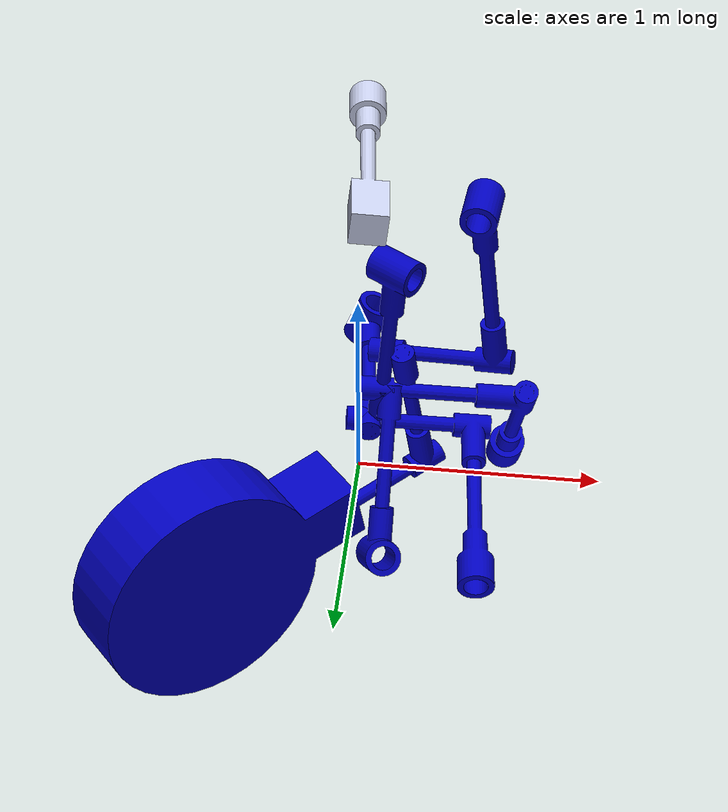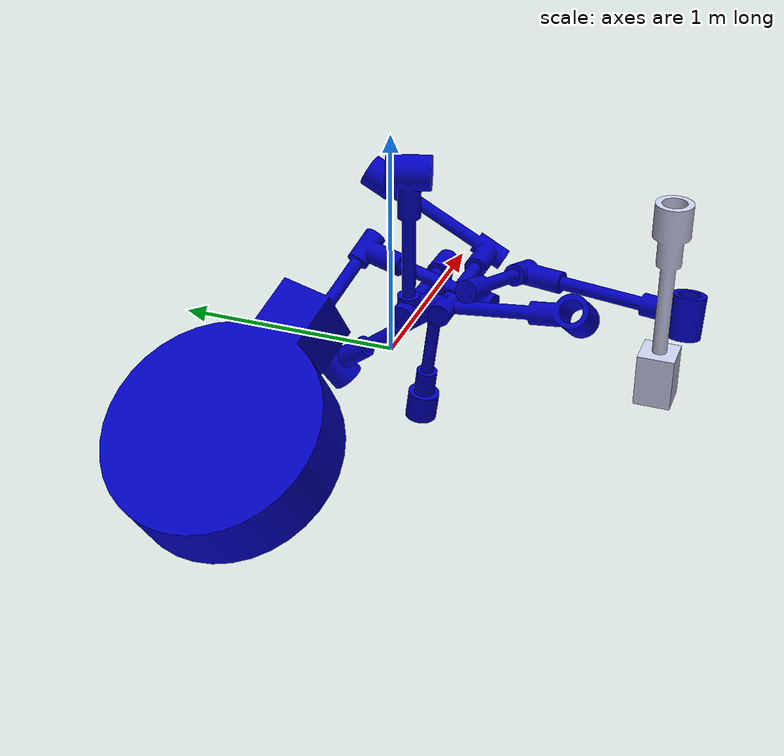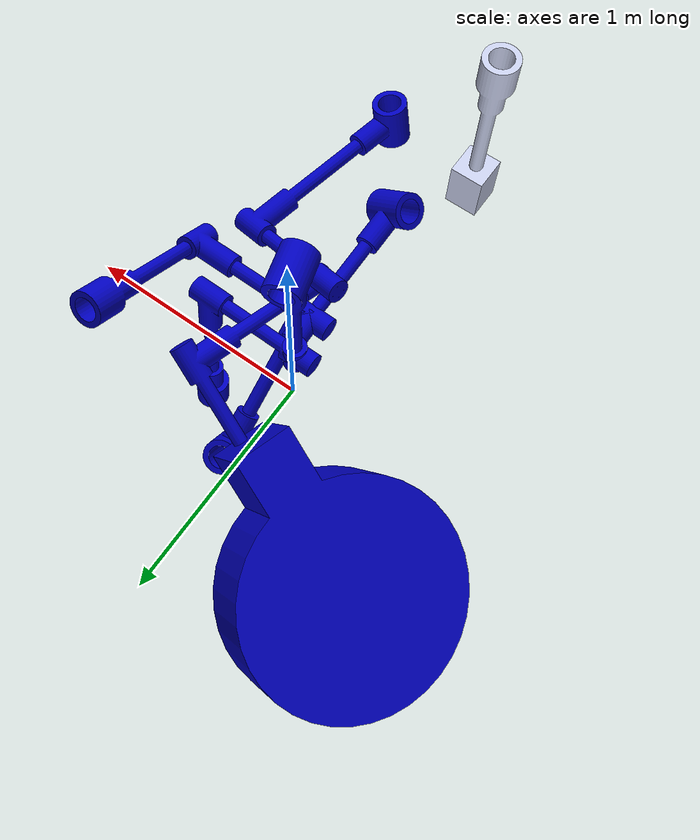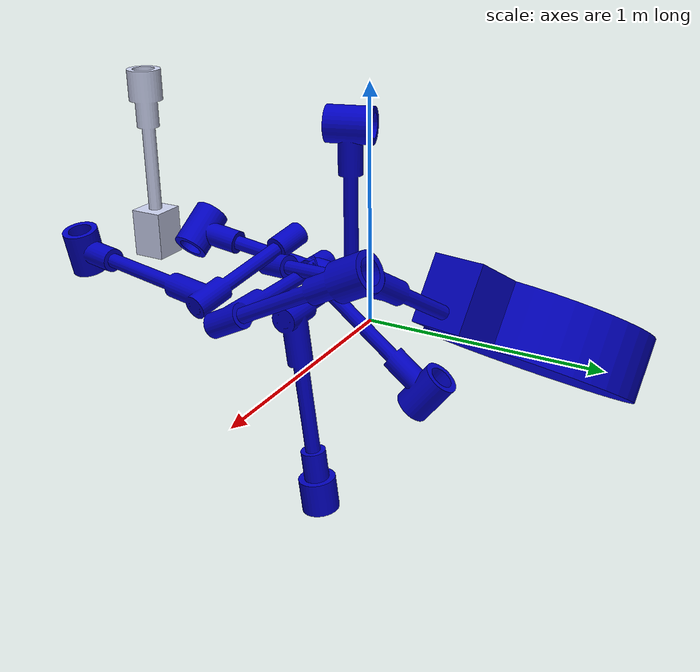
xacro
<?xml version="1.0" encoding="utf-8"?>
<robot
  name="1337dof.SLDASM">
  <link
    name="base_link">
    <inertial>
      <origin
        xyz="0.0369684012889796 0.0506212420276967 0.0677582412684986"
        rpy="0 0 0" />
      <mass
        value="0.173941058727949" />
      <inertia
        ixx="6.29832745939654E-05"
        ixy="1.65882325973073E-21"
        ixz="8.70254787086307E-21"
        iyy="0.00015866482435123"
        iyz="3.63886496984304E-19"
        izz="0.000123733274593965" />
    </inertial>
    <visual>
      <origin
        xyz="0 0 0"
        rpy="0 0 0" />
      <geometry>
        <mesh
		filename="$(find gazebodemo)/meshes/base_link.STL" />
      </geometry>
      <material
        name="">
        <color
          rgba="0.792156862745098 0.819607843137255 0.933333333333333 1" />
      </material>
    </visual>
    <collision>
      <origin
        xyz="0 0 0"
        rpy="0 0 0" />
      <geometry>
        <mesh
          filename="$(find gazebodemo)/meshes/base_link.STL" />
      </geometry>
    </collision>
  </link>
  <link
    name="Link1">
    <inertial>
      <origin
        xyz="2.65069825117203E-08 9.48872398709444E-09 -0.0359498127962766"
        rpy="0 0 0" />
      <mass
        value="0.0173257120587347" />
      <inertia
        ixx="3.25004859520439E-06"
        ixy="-3.38069193137107E-08"
        ixz="-1.70742167067627E-12"
        iyy="3.16261734314593E-06"
        iyz="5.74155862245102E-13"
        izz="9.20540399713751E-07" />
    </inertial>
    <visual>
      <origin
        xyz="0 0 0"
        rpy="0 0 0" />
      <geometry>
        <mesh
          filename="$(find gazebodemo)/meshes/Link1.STL" />
      </geometry>
      <material
        name="">
        <color
          rgba="0 0 0.752941176470588 1" />
      </material>
    </visual>
    <collision>
      <origin
        xyz="0 0 0"
        rpy="0 0 0" />
      <geometry>
        <mesh
          filename="$(find gazebodemo)/meshes/Link1.STL" />
      </geometry>
    </collision>
  </link>
  <joint
    name="theta1"
    type="continuous">
    <origin
      xyz="0.036968 -0.067758 0.1233"
      rpy="-3.1416 0 -0.34573" />
    <parent
      link="base_link" />
    <child
      link="Link1" />
    <axis
      xyz="0 0 1" />
  </joint>
  <link
    name="Link2">
    <inertial>
      <origin
        xyz="-0.0262269945070539 -0.015432929319128 0.0278714006556136"
        rpy="0 0 0" />
      <mass
        value="0.028168801779387" />
      <inertia
        ixx="3.52986424086249E-06"
        ixy="-7.55951935781856E-07"
        ixz="6.6164849512353E-13"
        iyy="4.36970759114926E-06"
        iyz="2.69723171306858E-12"
        izz="3.09973972288891E-06" />
    </inertial>
    <visual>
      <origin
        xyz="0 0 0"
        rpy="0 0 0" />
      <geometry>
        <mesh
          filename="$(find gazebodemo)/meshes/Link2.STL" />
      </geometry>
      <material
        name="">
        <color
          rgba="0 0 0.752941176470588 1" />
      </material>
    </visual>
    <collision>
      <origin
        xyz="0 0 0"
        rpy="0 0 0" />
      <geometry>
        <mesh
          filename="$(find gazebodemo)/meshes/Link2.STL" />
      </geometry>
    </collision>
  </link>
  <joint
    name="theta2"
    type="continuous">
    <origin
      xyz="0 0 -0.0750000000000031"
      rpy="-1.57079632679489 -0.650235874325519 -1.89990096674987" />
    <parent
      link="Link1" />
    <child
      link="Link2" />
    <axis
      xyz="0 0 1" />
  </joint>
  <link
    name="Link3">
    <inertial>
      <origin
        xyz="-4.46466091874598E-09 3.66335109469595E-09 -0.0385347824681982"
        rpy="0 0 0" />
      <mass
        value="0.0173255245335808" />
      <inertia
        ixx="3.15982752455319E-06"
        ixy="-2.98474022656947E-08"
        ixz="2.66809423869217E-13"
        iyy="3.25283096394751E-06"
        iyz="-3.20363490750374E-13"
        izz="9.20528460758495E-07" />
    </inertial>
    <visual>
      <origin
        xyz="0 0 0"
        rpy="0 0 0" />
      <geometry>
        <mesh
          filename="$(find gazebodemo)/meshes/Link3.STL" />
      </geometry>
      <material
        name="">
        <color
          rgba="0 0 0.752941176470588 1" />
      </material>
    </visual>
    <collision>
      <origin
        xyz="0 0 0"
        rpy="0 0 0" />
      <geometry>
        <mesh
          filename="$(find gazebodemo)/meshes/Link3.STL" />
      </geometry>
    </collision>
  </link>
  <joint
    name="theta3"
    type="continuous">
    <origin
      xyz="-0.0693060832608529 -0.0407822352304805 0.0399999999999975"
      rpy="1.5707963267949 0.285331074546732 2.10266992901883" />
    <parent
      link="Link2" />
    <child
      link="Link3" />
    <axis
      xyz="0 0 1" />
  </joint>
  <link
    name="Link4">
    <inertial>
      <origin
        xyz="0.00511483497525969 0.0299978037394035 -0.022871402565206"
        rpy="0 0 0" />
      <mass
        value="0.0281688125335254" />
      <inertia
        ixx="4.76567297728397E-06"
        ixy="-2.86560315949824E-07"
        ixz="1.0920375352632E-12"
        iyy="3.13389759278405E-06"
        iyz="-8.40894998110022E-14"
        izz="3.09974086888935E-06" />
    </inertial>
    <visual>
      <origin
        xyz="0 0 0"
        rpy="0 0 0" />
      <geometry>
        <mesh
          filename="$(find gazebodemo)/meshes/Link4.STL" />
      </geometry>
      <material
        name="">
        <color
          rgba="0 0 0.752941176470588 1" />
      </material>
    </visual>
    <collision>
      <origin
        xyz="0 0 0"
        rpy="0 0 0" />
      <geometry>
        <mesh
          filename="$(find gazebodemo)/meshes/Link4.STL" />
      </geometry>
    </collision>
  </link>
  <joint
    name="theta4"
    type="continuous">
    <origin
      xyz="0 0 -0.0775853005517348"
      rpy="-1.5707963267949 0.703395551974333 -2.85626939241439" />
    <parent
      link="Link3" />
    <child
      link="Link4" />
    <axis
      xyz="0 0 1" />
  </joint>
  <link
    name="Link5">
    <inertial>
      <origin
        xyz="-2.9372760806945E-08 1.6306815453504E-08 0.0491810543644399"
        rpy="0 0 0" />
      <mass
        value="0.0173257090846184" />
      <inertia
        ixx="3.25331617992524E-06"
        ixy="2.90964280858405E-08"
        ixz="-1.95486934336579E-12"
        iyy="3.15934936320364E-06"
        iyz="-1.50678889986871E-13"
        izz="9.20541291108706E-07" />
    </inertial>
    <visual>
      <origin
        xyz="0 0 0"
        rpy="0 0 0" />
      <geometry>
        <mesh
          filename="$(find gazebodemo)/meshes/Link5.STL" />
      </geometry>
      <material
        name="">
        <color
          rgba="0 0 0.752941176470588 1" />
      </material>
    </visual>
    <collision>
      <origin
        xyz="0 0 0"
        rpy="0 0 0" />
      <geometry>
        <mesh
          filename="$(find gazebodemo)/meshes/Link5.STL" />
      </geometry>
    </collision>
  </link>
  <joint
    name="theta5"
    type="continuous">
    <origin
      xyz="0.0117268154072887 0.068776168651376 -0.0349999999999985"
      rpy="1.5707963267949 -0.980275485423863 2.97270981779169" />
    <parent
      link="Link4" />
    <child
      link="Link5" />
    <axis
      xyz="0 0 1" />
  </joint>
  <link
    name="Link6">
    <inertial>
      <origin
        xyz="0.0148827001078183 -0.00619158142467507 -0.0372763472524425"
        rpy="0 0 0" />
      <mass
        value="0.025699480274069" />
      <inertia
        ixx="3.25126789152522E-06"
        ixy="7.28109927729717E-07"
        ixz="5.17099471328247E-10"
        iyy="4.69851690112135E-06"
        iyz="1.25833471943939E-09"
        izz="3.06692753220792E-06" />
    </inertial>
    <visual>
      <origin
        xyz="0 0 0"
        rpy="0 0 0" />
      <geometry>
        <mesh
          filename="$(find gazebodemo)/meshes/Link6.STL" />
      </geometry>
      <material
        name="">
        <color
          rgba="0 0 0.752941176470588 1" />
      </material>
    </visual>
    <collision>
      <origin
        xyz="0 0 0"
        rpy="0 0 0" />
      <geometry>
        <mesh
          filename="$(find gazebodemo)/meshes/Link6.STL" />
      </geometry>
    </collision>
  </link>
  <joint
    name="theta6"
    type="continuous">
    <origin
      xyz="0 0 0.0882312421354719"
      rpy="1.57079632679489 0.402579043759183 1.84800633691819" />
    <parent
      link="Link5" />
    <child
      link="Link6" />
    <axis
      xyz="0 0 1" />
  </joint>
  <link
    name="Link7">
    <inertial>
      <origin
        xyz="-7.31383742458291E-09 0.0106101762282248 0.0223006877446758"
        rpy="0 0 0" />
      <mass
        value="0.020154732962088" />
      <inertia
        ixx="3.93405664070193E-06"
        ixy="1.76838456784841E-12"
        ixz="1.7035809482773E-12"
        iyy="2.41929631977898E-06"
        iyz="-1.29093234756909E-12"
        izz="2.21925811848881E-06" />
    </inertial>
    <visual>
      <origin
        xyz="0 0 0"
        rpy="0 0 0" />
      <geometry>
        <mesh
          filename="$(find gazebodemo)/meshes/Link7.STL" />
      </geometry>
      <material
        name="">
        <color
          rgba="0 0 0.752941176470588 1" />
      </material>
    </visual>
    <collision>
      <origin
        xyz="0 0 0"
        rpy="0 0 0" />
      <geometry>
        <mesh
          filename="$(find gazebodemo)/meshes/Link7.STL" />
      </geometry>
    </collision>
  </link>
  <joint
    name="theta7"
    type="continuous">
    <origin
      xyz="0.060301 -0.024277 -0.060991"
      rpy="1.5212 1.3211 2.6992" />
    <parent
      link="Link6" />
    <child
      link="Link7" />
    <axis
      xyz="0 0 1" />
  </joint>

  <ros2_control name="GazeboSystem" type="system">
    <hardware>
      <plugin>gazebo_ros2_control/GazeboSystem</plugin>
    </hardware>

    <joint name="theta1">
      <state_interface   name="position"/>
      <state_interface   name="velocity"/>
      <command_interface name="velocity"/>
    </joint>

    <joint name="theta2">
      <state_interface   name="position"/>
      <state_interface   name="velocity"/>
      <command_interface name="velocity"/>
    </joint>

    <joint name="theta3">
      <state_interface   name="position"/>
      <state_interface   name="velocity"/>
      <command_interface name="velocity"/>
    </joint>

    <joint name="theta4">
      <state_interface   name="position"/>
      <state_interface   name="velocity"/>
      <command_interface name="velocity"/>
    </joint>

    <joint name="theta5">
      <state_interface   name="position"/>
      <state_interface   name="velocity"/>
      <command_interface name="velocity"/>
    </joint>

    <joint name="theta6">
      <state_interface   name="position"/>
      <state_interface   name="velocity"/>
      <command_interface name="velocity"/>
    </joint>

    <joint name="theta7">
      <state_interface   name="position"/>
      <state_interface   name="velocity"/>
      <command_interface name="velocity"/>
    </joint>
  </ros2_control>

  <gazebo>
    <plugin name="gazebo_ros2_control" filename="libgazebo_ros2_control.so">
	    <parameters>/home/hope/133ws/src/gazebodemo/config/sevenDOF_control_parameters.yaml</parameters>
    </plugin>
  </gazebo>

</robot>
